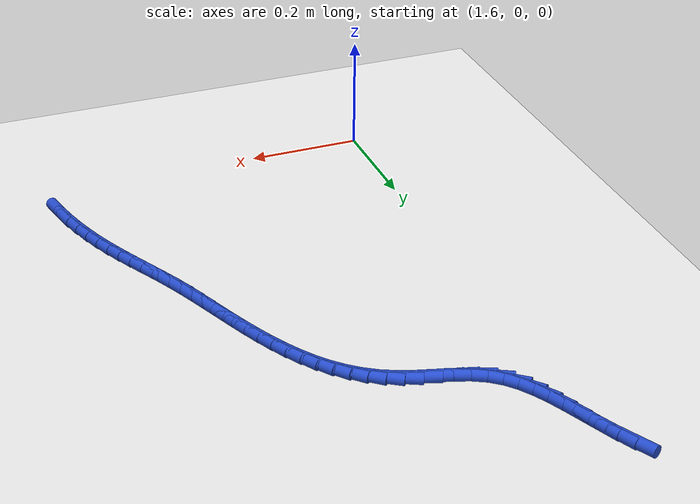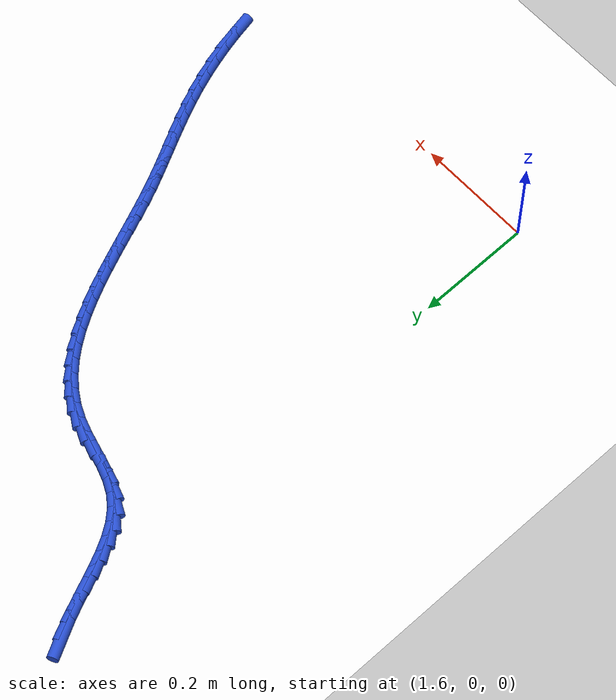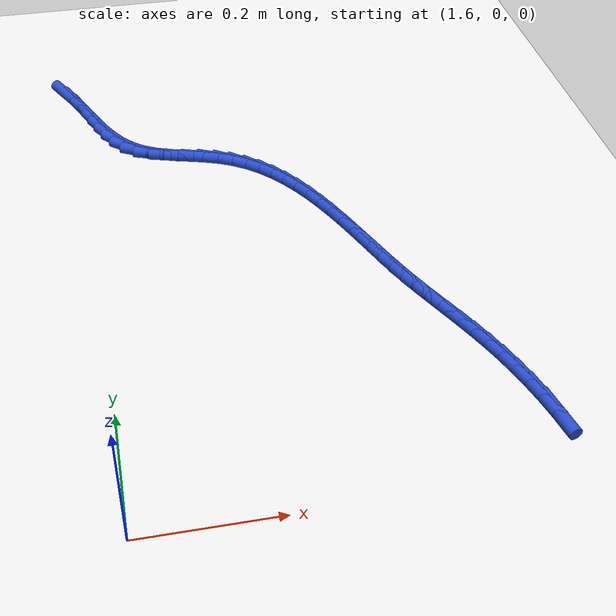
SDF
<sdf version="1.6">
 <world name="default">
  <model name="ground_plane">
   <static>1</static>
   <link name="link">
    <collision name="collision">
     <geometry><plane><normal>0 0 1</normal><size>100 100</size></plane></geometry>
     <surface><friction><ode><mu>100</mu><mu2>50</mu2></ode></friction></surface>
    </collision>
    <visual name="visual">
     <cast_shadows>0</cast_shadows>
     <geometry><plane><normal>0 0 1</normal><size>100 100</size></plane></geometry>
     <material>
      <script><uri>file://media/materials/scripts/gazebo.material</uri><name>Gazebo/WhiteGlow</name></script>
     </material>
    </visual>
   </link>
  </model>
  <model name="line">
   <link name="link_82">
    <pose>1.5720556760530988 0.990902152063361 0.01 0 1.57 -1.0878216162092442</pose>
    <collision name="collision">
     <geometry><cylinder><radius>0.01</radius><length>0.08</length></cylinder></geometry>
    </collision>
    <visual name="visual">
     <material>
      <script><name>Gazebo/Blue</name><uri>file://media/materials/scripts/gazebo.material</uri></script>
     </material>
     <geometry><cylinder><radius>0.01</radius><length>0.08</length></cylinder></geometry>
    </visual>
   </link>
   <link name="link_83">
    <pose>1.58565995686362 0.9649594729698312 0.01 0 1.57 -1.1410427432330144</pose>
    <collision name="collision">
     <geometry><cylinder><radius>0.01</radius><length>0.08</length></cylinder></geometry>
    </collision>
    <visual name="visual">
     <material>
      <script><name>Gazebo/Blue</name><uri>file://media/materials/scripts/gazebo.material</uri></script>
     </material>
     <geometry><cylinder><radius>0.01</radius><length>0.08</length></cylinder></geometry>
    </visual>
   </link>
   <link name="link_84">
    <pose>1.5978584374529012 0.9383439952064034 0.01 0 1.57 -1.1674126264989513</pose>
    <collision name="collision">
     <geometry><cylinder><radius>0.01</radius><length>0.08</length></cylinder></geometry>
    </collision>
    <visual name="visual">
     <material>
      <script><name>Gazebo/Blue</name><uri>file://media/materials/scripts/gazebo.material</uri></script>
     </material>
     <geometry><cylinder><radius>0.01</radius><length>0.08</length></cylinder></geometry>
    </visual>
   </link>
   <link name="link_85">
    <pose>1.6092629204390752 0.9116223058007387 0.01 0 1.57 -1.1669524949722914</pose>
    <collision name="collision">
     <geometry><cylinder><radius>0.01</radius><length>0.08</length></cylinder></geometry>
    </collision>
    <visual name="visual">
     <material>
      <script><name>Gazebo/Blue</name><uri>file://media/materials/scripts/gazebo.material</uri></script>
     </material>
     <geometry><cylinder><radius>0.01</radius><length>0.08</length></cylinder></geometry>
    </visual>
   </link>
   <link name="link_86">
    <pose>1.6204852084402734 0.8853609917804982 0.01 0 1.57 -1.138216338044717</pose>
    <collision name="collision">
     <geometry><cylinder><radius>0.01</radius><length>0.08</length></cylinder></geometry>
    </collision>
    <visual name="visual">
     <material>
      <script><name>Gazebo/Blue</name><uri>file://media/materials/scripts/gazebo.material</uri></script>
     </material>
     <geometry><cylinder><radius>0.01</radius><length>0.08</length></cylinder></geometry>
    </visual>
   </link>
   <link name="link_87">
    <pose>1.632137104074629 0.860126640173344 0.01 0 1.57 -1.0780479362413578</pose>
    <collision name="collision">
     <geometry><cylinder><radius>0.01</radius><length>0.08</length></cylinder></geometry>
    </collision>
    <visual name="visual">
     <material>
      <script><name>Gazebo/Blue</name><uri>file://media/materials/scripts/gazebo.material</uri></script>
     </material>
     <geometry><cylinder><radius>0.01</radius><length>0.08</length></cylinder></geometry>
    </visual>
   </link>
   <link name="link_88">
    <pose>1.6448304099602749 0.8364858380069374 0.01 0 1.57 -0.9819538153528976</pose>
    <collision name="collision">
     <geometry><cylinder><radius>0.01</radius><length>0.08</length></cylinder></geometry>
    </collision>
    <visual name="visual">
     <material>
      <script><name>Gazebo/Blue</name><uri>file://media/materials/scripts/gazebo.material</uri></script>
     </material>
     <geometry><cylinder><radius>0.01</radius><length>0.08</length></cylinder></geometry>
    </visual>
   </link>
   <link name="link_89">
    <pose>1.6591769287153426 0.8150051723089391 0.01 0 1.57 -0.8459032993686199</pose>
    <collision name="collision">
     <geometry><cylinder><radius>0.01</radius><length>0.08</length></cylinder></geometry>
    </collision>
    <visual name="visual">
     <material>
      <script><name>Gazebo/Blue</name><uri>file://media/materials/scripts/gazebo.material</uri></script>
     </material>
     <geometry><cylinder><radius>0.01</radius><length>0.08</length></cylinder></geometry>
    </visual>
   </link>
   <link name="link_90">
    <pose>1.675788462957965 0.7962512301070109 0.01 0 1.57 -0.6706586350709528</pose>
    <collision name="collision">
     <geometry><cylinder><radius>0.01</radius><length>0.08</length></cylinder></geometry>
    </collision>
    <visual name="visual">
     <material>
      <script><name>Gazebo/Blue</name><uri>file://media/materials/scripts/gazebo.material</uri></script>
     </material>
     <geometry><cylinder><radius>0.01</radius><length>0.08</length></cylinder></geometry>
    </visual>
   </link>
   <link name="link_91">
    <pose>1.6952768153062743 0.7807905984288139 0.01 0 1.57 -0.47753788828962357</pose>
    <collision name="collision">
     <geometry><cylinder><radius>0.01</radius><length>0.08</length></cylinder></geometry>
    </collision>
    <visual name="visual">
     <material>
      <script><name>Gazebo/Blue</name><uri>file://media/materials/scripts/gazebo.material</uri></script>
     </material>
     <geometry><cylinder><radius>0.01</radius><length>0.08</length></cylinder></geometry>
    </visual>
   </link>
   <link name="link_92">
    <pose>1.7180741121832672 0.7689933298550983 0.01 0 1.57 -0.34137714506301226</pose>
    <collision name="collision">
     <geometry><cylinder><radius>0.01</radius><length>0.08</length></cylinder></geometry>
    </collision>
    <visual name="visual">
     <material>
      <script><name>Gazebo/Blue</name><uri>file://media/materials/scripts/gazebo.material</uri></script>
     </material>
     <geometry><cylinder><radius>0.01</radius><length>0.08</length></cylinder></geometry>
    </visual>
   </link>
   <link name="link_93">
    <pose>1.7434635792224578 0.7599727797116128 0.01 0 1.57 -0.27707837648120537</pose>
    <collision name="collision">
     <geometry><cylinder><radius>0.01</radius><length>0.08</length></cylinder></geometry>
    </collision>
    <visual name="visual">
     <material>
      <script><name>Gazebo/Blue</name><uri>file://media/materials/scripts/gazebo.material</uri></script>
     </material>
     <geometry><cylinder><radius>0.01</radius><length>0.08</length></cylinder></geometry>
    </visual>
   </link>
   <link name="link_94">
    <pose>1.7702760608130952 0.7523474770753229 0.01 0 1.57 -0.2741885677714096</pose>
    <collision name="collision">
     <geometry><cylinder><radius>0.01</radius><length>0.08</length></cylinder></geometry>
    </collision>
    <visual name="visual">
     <material>
      <script><name>Gazebo/Blue</name><uri>file://media/materials/scripts/gazebo.material</uri></script>
     </material>
     <geometry><cylinder><radius>0.01</radius><length>0.08</length></cylinder></geometry>
    </visual>
   </link>
   <link name="link_95">
    <pose>1.7973413112501795 0.7447347586500462 0.01 0 1.57 -0.3309079616941248</pose>
    <collision name="collision">
     <geometry><cylinder><radius>0.01</radius><length>0.08</length></cylinder></geometry>
    </collision>
    <visual name="visual">
     <material>
      <script><name>Gazebo/Blue</name><uri>file://media/materials/scripts/gazebo.material</uri></script>
     </material>
     <geometry><cylinder><radius>0.01</radius><length>0.08</length></cylinder></geometry>
    </visual>
   </link>
   <link name="link_96">
    <pose>1.8234890848287097 0.735751961139601 0.01 0 1.57 -0.4442973760029738</pose>
    <collision name="collision">
     <geometry><cylinder><radius>0.01</radius><length>0.08</length></cylinder></geometry>
    </collision>
    <visual name="visual">
     <material>
      <script><name>Gazebo/Blue</name><uri>file://media/materials/scripts/gazebo.material</uri></script>
     </material>
     <geometry><cylinder><radius>0.01</radius><length>0.08</length></cylinder></geometry>
    </visual>
   </link>
   <link name="link_97">
    <pose>1.8477158382399255 0.7242190326320074 0.01 0 1.57 -0.5690335777718374</pose>
    <collision name="collision">
     <geometry><cylinder><radius>0.01</radius><length>0.08</length></cylinder></geometry>
    </collision>
    <visual name="visual">
     <material>
      <script><name>Gazebo/Blue</name><uri>file://media/materials/scripts/gazebo.material</uri></script>
     </material>
     <geometry><cylinder><radius>0.01</radius><length>0.08</length></cylinder></geometry>
    </visual>
   </link>
   <link name="link_98">
    <pose>1.8699010968470984 0.7100292097223708 0.01 0 1.57 -0.6850923630914653</pose>
    <collision name="collision">
     <geometry><cylinder><radius>0.01</radius><length>0.08</length></cylinder></geometry>
    </collision>
    <visual name="visual">
     <material>
      <script><name>Gazebo/Blue</name><uri>file://media/materials/scripts/gazebo.material</uri></script>
     </material>
     <geometry><cylinder><radius>0.01</radius><length>0.08</length></cylinder></geometry>
    </visual>
   </link>
   <link name="link_99">
    <pose>1.8902156868339075 0.6934297782802717 0.01 0 1.57 -0.7893205600126506</pose>
    <collision name="collision">
     <geometry><cylinder><radius>0.01</radius><length>0.08</length></cylinder></geometry>
    </collision>
    <visual name="visual">
     <material>
      <script><name>Gazebo/Blue</name><uri>file://media/materials/scripts/gazebo.material</uri></script>
     </material>
     <geometry><cylinder><radius>0.01</radius><length>0.08</length></cylinder></geometry>
    </visual>
   </link>
   <link name="link_100">
    <pose>1.9088306151598549 0.6746682438916294 0.01 0 1.57 -0.8801776730260613</pose>
    <collision name="collision">
     <geometry><cylinder><radius>0.01</radius><length>0.08</length></cylinder></geometry>
    </collision>
    <visual name="visual">
     <material>
      <script><name>Gazebo/Blue</name><uri>file://media/materials/scripts/gazebo.material</uri></script>
     </material>
     <geometry><cylinder><radius>0.01</radius><length>0.08</length></cylinder></geometry>
    </visual>
   </link>
   <link name="link_101">
    <pose>1.925916888784445 0.6539921121423626 0.01 0 1.57 -0.9574208701274536</pose>
    <collision name="collision">
     <geometry><cylinder><radius>0.01</radius><length>0.08</length></cylinder></geometry>
    </collision>
    <visual name="visual">
     <material>
      <script><name>Gazebo/Blue</name><uri>file://media/materials/scripts/gazebo.material</uri></script>
     </material>
     <geometry><cylinder><radius>0.01</radius><length>0.08</length></cylinder></geometry>
    </visual>
   </link>
   <link name="link_102">
    <pose>1.941645514667179 0.6316488886183897 0.01 0 1.57 -1.021626149066568</pose>
    <collision name="collision">
     <geometry><cylinder><radius>0.01</radius><length>0.08</length></cylinder></geometry>
    </collision>
    <visual name="visual">
     <material>
      <script><name>Gazebo/Blue</name><uri>file://media/materials/scripts/gazebo.material</uri></script>
     </material>
     <geometry><cylinder><radius>0.01</radius><length>0.08</length></cylinder></geometry>
    </visual>
   </link>
   <link name="link_103">
    <pose>1.956187499767561 0.6078860789056302 0.01 0 1.57 -1.0737551194234003</pose>
    <collision name="collision">
     <geometry><cylinder><radius>0.01</radius><length>0.08</length></cylinder></geometry>
    </collision>
    <visual name="visual">
     <material>
      <script><name>Gazebo/Blue</name><uri>file://media/materials/scripts/gazebo.material</uri></script>
     </material>
     <geometry><cylinder><radius>0.01</radius><length>0.08</length></cylinder></geometry>
    </visual>
   </link>
   <link name="link_104">
    <pose>1.9697138510450933 0.5829511885900026 0.01 0 1.57 -1.11485060678582</pose>
    <collision name="collision">
     <geometry><cylinder><radius>0.01</radius><length>0.08</length></cylinder></geometry>
    </collision>
    <visual name="visual">
     <material>
      <script><name>Gazebo/Blue</name><uri>file://media/materials/scripts/gazebo.material</uri></script>
     </material>
     <geometry><cylinder><radius>0.01</radius><length>0.08</length></cylinder></geometry>
    </visual>
   </link>
   <link name="link_105">
    <pose>1.9823955754592792 0.5570917232574264 0.01 0 1.57 -1.145855256313466</pose>
    <collision name="collision">
     <geometry><cylinder><radius>0.01</radius><length>0.08</length></cylinder></geometry>
    </collision>
    <visual name="visual">
     <material>
      <script><name>Gazebo/Blue</name><uri>file://media/materials/scripts/gazebo.material</uri></script>
     </material>
     <geometry><cylinder><radius>0.01</radius><length>0.08</length></cylinder></geometry>
    </visual>
   </link>
   <link name="link_106">
    <pose>1.9944036799696216 0.5305551884938196 0.01 0 1.57 -1.1675162204559872</pose>
    <collision name="collision">
     <geometry><cylinder><radius>0.01</radius><length>0.08</length></cylinder></geometry>
    </collision>
    <visual name="visual">
     <material>
      <script><name>Gazebo/Blue</name><uri>file://media/materials/scripts/gazebo.material</uri></script>
     </material>
     <geometry><cylinder><radius>0.01</radius><length>0.08</length></cylinder></geometry>
    </visual>
   </link>
   <link name="link_107">
    <pose>2.005909171535624 0.5035890898851014 0.01 0 1.57 -1.1803394365335729</pose>
    <collision name="collision">
     <geometry><cylinder><radius>0.01</radius><length>0.08</length></cylinder></geometry>
    </collision>
    <visual name="visual">
     <material>
      <script><name>Gazebo/Blue</name><uri>file://media/materials/scripts/gazebo.material</uri></script>
     </material>
     <geometry><cylinder><radius>0.01</radius><length>0.08</length></cylinder></geometry>
    </visual>
   </link>
   <link name="link_108">
    <pose>2.0170830571167877 0.4764409330171906 0.01 0 1.57 -1.1845671145134578</pose>
    <collision name="collision">
     <geometry><cylinder><radius>0.01</radius><length>0.08</length></cylinder></geometry>
    </collision>
    <visual name="visual">
     <material>
      <script><name>Gazebo/Blue</name><uri>file://media/materials/scripts/gazebo.material</uri></script>
     </material>
     <geometry><cylinder><radius>0.01</radius><length>0.08</length></cylinder></geometry>
    </visual>
   </link>
   <link name="link_109">
    <pose>2.028096343672617 0.44935822347600635 0.01 0 1.57 -1.1801620216915123</pose>
    <collision name="collision">
     <geometry><cylinder><radius>0.01</radius><length>0.08</length></cylinder></geometry>
    </collision>
    <visual name="visual">
     <material>
      <script><name>Gazebo/Blue</name><uri>file://media/materials/scripts/gazebo.material</uri></script>
     </material>
     <geometry><cylinder><radius>0.01</radius><length>0.08</length></cylinder></geometry>
    </visual>
   </link>
   <link name="link_110">
    <pose>2.039120038162615 0.42258846684746726 0.01 0 1.57 -1.166789598031132</pose>
    <collision name="collision">
     <geometry><cylinder><radius>0.01</radius><length>0.08</length></cylinder></geometry>
    </collision>
    <visual name="visual">
     <material>
      <script><name>Gazebo/Blue</name><uri>file://media/materials/scripts/gazebo.material</uri></script>
     </material>
     <geometry><cylinder><radius>0.01</radius><length>0.08</length></cylinder></geometry>
    </visual>
   </link>
   <link name="link_111">
    <pose>2.050325147546283 0.3963791687174923 0.01 0 1.57 -1.1440446753641464</pose>
    <collision name="collision">
     <geometry><cylinder><radius>0.01</radius><length>0.08</length></cylinder></geometry>
    </collision>
    <visual name="visual">
     <material>
      <script><name>Gazebo/Blue</name><uri>file://media/materials/scripts/gazebo.material</uri></script>
     </material>
     <geometry><cylinder><radius>0.01</radius><length>0.08</length></cylinder></geometry>
    </visual>
   </link>
   <link name="link_112">
    <pose>2.0618783275144055 0.37097054753177783 0.01 0 1.57 -1.1194734233293004</pose>
    <collision name="collision">
     <geometry><cylinder><radius>0.01</radius><length>0.08</length></cylinder></geometry>
    </collision>
    <visual name="visual">
     <material>
      <script><name>Gazebo/Blue</name><uri>file://media/materials/scripts/gazebo.material</uri></script>
     </material>
     <geometry><cylinder><radius>0.01</radius><length>0.08</length></cylinder></geometry>
    </visual>
   </link>
   <link name="link_113">
    <pose>2.07380428576725 0.3463650991365235 0.01 0 1.57 -1.1034641389446684</pose>
    <collision name="collision">
     <geometry><cylinder><radius>0.01</radius><length>0.08</length></cylinder></geometry>
    </collision>
    <visual name="visual">
     <material>
      <script><name>Gazebo/Blue</name><uri>file://media/materials/scripts/gazebo.material</uri></script>
     </material>
     <geometry><cylinder><radius>0.01</radius><length>0.08</length></cylinder></geometry>
    </visual>
   </link>
   <link name="link_114">
    <pose>2.0859576911029576 0.32228055247364895 0.01 0 1.57 -1.0973363327083672</pose>
    <collision name="collision">
     <geometry><cylinder><radius>0.01</radius><length>0.08</length></cylinder></geometry>
    </collision>
    <visual name="visual">
     <material>
      <script><name>Gazebo/Blue</name><uri>file://media/materials/scripts/gazebo.material</uri></script>
     </material>
     <geometry><cylinder><radius>0.01</radius><length>0.08</length></cylinder></geometry>
    </visual>
   </link>
   <link name="link_115">
    <pose>2.0981831853844612 0.2984178442142206 0.01 0 1.57 -1.1014089442576385</pose>
    <collision name="collision">
     <geometry><cylinder><radius>0.01</radius><length>0.08</length></cylinder></geometry>
    </collision>
    <visual name="visual">
     <material>
      <script><name>Gazebo/Blue</name><uri>file://media/materials/scripts/gazebo.material</uri></script>
     </material>
     <geometry><cylinder><radius>0.01</radius><length>0.08</length></cylinder></geometry>
    </visual>
   </link>
   <link name="link_116">
    <pose>2.110325410474691 0.2744779110293049 0.01 0 1.57 -1.115557161982839</pose>
    <collision name="collision">
     <geometry><cylinder><radius>0.01</radius><length>0.08</length></cylinder></geometry>
    </collision>
    <visual name="visual">
     <material>
      <script><name>Gazebo/Blue</name><uri>file://media/materials/scripts/gazebo.material</uri></script>
     </material>
     <geometry><cylinder><radius>0.01</radius><length>0.08</length></cylinder></geometry>
    </visual>
   </link>
   <link name="link_117">
    <pose>2.122229008236578 0.2501616895899685 0.01 0 1.57 -1.1392122084258862</pose>
    <collision name="collision">
     <geometry><cylinder><radius>0.01</radius><length>0.08</length></cylinder></geometry>
    </collision>
    <visual name="visual">
     <material>
      <script><name>Gazebo/Blue</name><uri>file://media/materials/scripts/gazebo.material</uri></script>
     </material>
     <geometry><cylinder><radius>0.01</radius><length>0.08</length></cylinder></geometry>
    </visual>
   </link>
   <link name="link_118">
    <pose>2.1337386205330526 0.2251701165672777 0.01 0 1.57 -1.1713834219663501</pose>
    <collision name="collision">
     <geometry><cylinder><radius>0.01</radius><length>0.08</length></cylinder></geometry>
    </collision>
    <visual name="visual">
     <material>
      <script><name>Gazebo/Blue</name><uri>file://media/materials/scripts/gazebo.material</uri></script>
     </material>
     <geometry><cylinder><radius>0.01</radius><length>0.08</length></cylinder></geometry>
    </visual>
   </link>
   <link name="link_119">
    <pose>2.1446988907802242 0.19920414830196984 0.01 0 1.57 -1.2092542843180305</pose>
    <collision name="collision">
     <geometry><cylinder><radius>0.01</radius><length>0.08</length></cylinder></geometry>
    </collision>
    <visual name="visual">
     <material>
      <script><name>Gazebo/Blue</name><uri>file://media/materials/scripts/gazebo.material</uri></script>
     </material>
     <geometry><cylinder><radius>0.01</radius><length>0.08</length></cylinder></geometry>
    </visual>
   </link>
   <link name="link_120">
    <pose>2.154962305068771 0.17206406194263923 0.01 0 1.57 -1.247432484158365</pose>
    <collision name="collision">
     <geometry><cylinder><radius>0.01</radius><length>0.08</length></cylinder></geometry>
    </collision>
    <visual name="visual">
     <material>
      <script><name>Gazebo/Blue</name><uri>file://media/materials/scripts/gazebo.material</uri></script>
     </material>
     <geometry><cylinder><radius>0.01</radius><length>0.08</length></cylinder></geometry>
    </visual>
   </link>
   <link name="link_121">
    <pose>2.164407424139764 0.14388034792389096 0.01 0 1.57 -1.2855993463351452</pose>
    <collision name="collision">
     <geometry><cylinder><radius>0.01</radius><length>0.08</length></cylinder></geometry>
    </collision>
    <visual name="visual">
     <material>
      <script><name>Gazebo/Blue</name><uri>file://media/materials/scripts/gazebo.material</uri></script>
     </material>
     <geometry><cylinder><radius>0.01</radius><length>0.08</length></cylinder></geometry>
    </visual>
   </link>
   <link name="link_122">
    <pose>2.172918220743012 0.11485203517127875 0.01 0 1.57 -1.3244867328235086</pose>
    <collision name="collision">
     <geometry><cylinder><radius>0.01</radius><length>0.08</length></cylinder></geometry>
    </collision>
    <visual name="visual">
     <material>
      <script><name>Gazebo/Blue</name><uri>file://media/materials/scripts/gazebo.material</uri></script>
     </material>
     <geometry><cylinder><radius>0.01</radius><length>0.08</length></cylinder></geometry>
    </visual>
   </link>
   <link name="link_123">
    <pose>2.1803786676283234 0.08517815261035601 0.01 0 1.57 -1.3647970343900189</pose>
    <collision name="collision">
     <geometry><cylinder><radius>0.01</radius><length>0.08</length></cylinder></geometry>
    </collision>
    <visual name="visual">
     <material>
      <script><name>Gazebo/Blue</name><uri>file://media/materials/scripts/gazebo.material</uri></script>
     </material>
     <geometry><cylinder><radius>0.01</radius><length>0.08</length></cylinder></geometry>
    </visual>
   </link>
  </model>
 </world>
</sdf>
